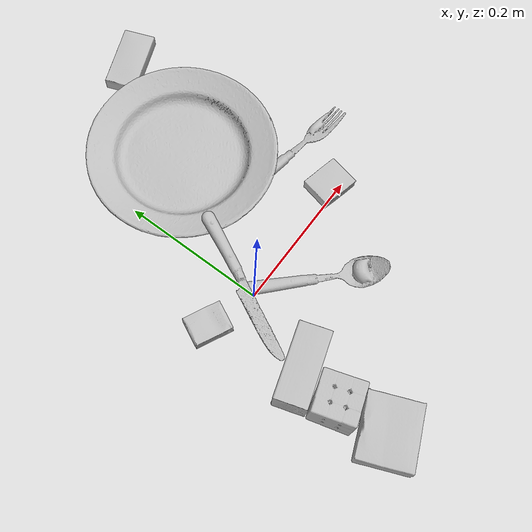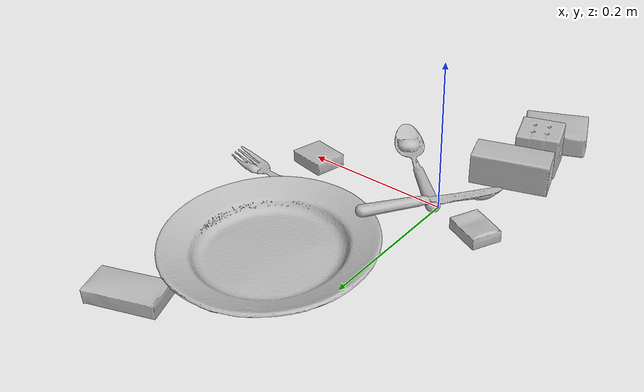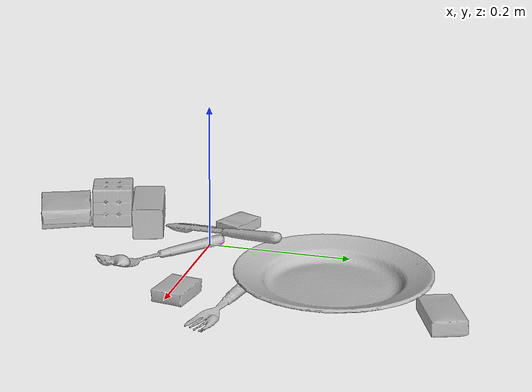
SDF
<sdf version="1.4">
  <world name="default">
    <light name="light1" type="point">
      <pose>0 0 1 0 0 0</pose>
      <diffuse>3 3 3 1</diffuse>
      <specular>3 3 3 1</specular>
    </light>
    <light name="light2" type="point">
      <pose>0 0.5 2 0 0 0</pose>
      <diffuse>1 1 1 1</diffuse>
      <specular>1 1 1 1</specular>
    </light>
    <light name="light3" type="point">
      <pose>0 0.5 2 0 0 0</pose>
      <diffuse>3 3 3 1</diffuse>
      <specular>3 3 3 1</specular>
    </light>
    <scene>
      <ambient>0.7 0.7 0.7</ambient>
    </scene>
    <model name="box11">
      <link name="link_box11">
        <collision name="default">
          <geometry>
            <mesh>
              <uri>model://gelatin_box/collision_meshes/collision.obj</uri>
              <scale>1.0 1.0 1.0</scale>
            </mesh>
          </geometry>
          <surface>
            <friction>
              <ode>
                <mu>0.5</mu>
                <mu2>0.5</mu2>
              </ode>
            </friction>
          <contact>
        <ode>
            <max_vel>0</max_vel>
            <min_depth>0.0001</min_depth>
            <kp>1e8</kp>
        </ode>
    </contact></surface>
        </collision>
        <visual name="default">
          <geometry>
            <mesh>
              <uri>model://gelatin_box/visual_meshes/visual.dae</uri>
              <scale>1.0 1.0 1.0</scale>
            </mesh>
          </geometry>
        </visual>
        <inertial>
          <mass>0.25029057264328003</mass>
          <pose>0.0004319618456065655 0.00011156871914863586 -0.0003640321083366871 -0.0010503719874808634 -0.004755820553863559 0.01644055760983946</pose>
          <inertia>
            <ixx>0.00017668474</ixx>
            <iyy>0.000126205</iyy>
            <izz>0.00026895347</izz>
            <ixy>0</ixy>
            <ixz>0</ixz>
            <iyz>0</iyz>
          </inertia>
        </inertial>
      </link>
      <pose>-0.04236810281872749 -0.2341756820678711 0.015168314799666405 0.005597260701167845 -0.007304341015217546 1.9556753325202278</pose>
    </model>
    <model name="box12">
      <link name="link_box12">
        <collision name="default">
          <geometry>
            <mesh>
              <uri>model://rubiks_cube/collision_meshes/collision.obj</uri>
              <scale>1.0 1.0 1.0</scale>
            </mesh>
          </geometry>
          <surface>
            <friction>
              <ode>
                <mu>0.5</mu>
                <mu2>0.5</mu2>
              </ode>
            </friction>
          <contact>
        <ode>
            <max_vel>0</max_vel>
            <min_depth>0.0001</min_depth>
            <kp>1e8</kp>
        </ode>
    </contact></surface>
        </collision>
        <visual name="default">
          <geometry>
            <mesh>
              <uri>model://rubiks_cube/visual_meshes/visual.dae</uri>
              <scale>1.0 1.0 1.0</scale>
            </mesh>
          </geometry>
        </visual>
        <inertial>
          <mass>0.21638615429401398</mass>
          <pose>2.6721043468569405e-05 5.2569666877388954e-05 -7.264316536748083e-06 -0.054671974778446215 -0.0981397652693683 -0.03445575269454635</pose>
          <inertia>
            <ixx>0.00011956789</ixx>
            <iyy>0.00011901029</iyy>
            <izz>0.00012055871</izz>
            <ixy>0</ixy>
            <ixz>0</ixz>
            <iyz>0</iyz>
          </inertia>
        </inertial>
      </link>
      <pose>-0.05248400941491127 -0.1637006551027298 0.028678977862000465 -2.721959507679151e-06 -1.1335705419697509e-06 0.30604878222834553</pose>
    </model>
    <model name="box13">
      <link name="link_box13">
        <collision name="default">
          <geometry>
            <mesh>
              <uri>model://pudding_box/collision_meshes/collision.obj</uri>
              <scale>0.5 0.5 0.5</scale>
            </mesh>
          </geometry>
          <surface>
            <friction>
              <ode>
                <mu>0.5</mu>
                <mu2>0.5</mu2>
              </ode>
            </friction>
          <contact>
        <ode>
            <max_vel>0</max_vel>
            <min_depth>0.0001</min_depth>
            <kp>1e8</kp>
        </ode>
    </contact></surface>
        </collision>
        <visual name="default">
          <geometry>
            <mesh>
              <uri>model://pudding_box/visual_meshes/visual.dae</uri>
              <scale>0.5 0.5 0.5</scale>
            </mesh>
          </geometry>
        </visual>
        <inertial>
          <mass>0.024692855775356293</mass>
          <pose>0.00024474109522998333 0.00040339428232982755 -0.0002594413817860186 0.005213102294063647 -0.006603794537377036 0.020079827031592012</pose>
          <inertia>
            <ixx>6.9785e-06</ixx>
            <iyy>4.695185e-06</iyy>
            <izz>1.030558e-05</izz>
            <ixy>0</ixy>
            <ixz>0</ixz>
            <iyz>0</iyz>
          </inertia>
        </inertial>
      </link>
      <pose>0.18741346895694733 0.012415344826877117 0.009862900711596012 0.022348477492758582 -0.011391760947895995 1.3557119353073426</pose>
    </model>
    <model name="box21">
      <link name="link_box21">
        <collision name="default">
          <geometry>
            <mesh>
              <uri>model://wood_block/collision_meshes/collision.obj</uri>
              <scale>0.5 0.5 0.5</scale>
            </mesh>
          </geometry>
          <surface>
            <friction>
              <ode>
                <mu>0.5</mu>
                <mu2>0.5</mu2>
              </ode>
            </friction>
          <contact>
        <ode>
            <max_vel>0</max_vel>
            <min_depth>0.0001</min_depth>
            <kp>1e8</kp>
        </ode>
    </contact></surface>
        </collision>
        <visual name="default">
          <geometry>
            <mesh>
              <uri>model://wood_block/visual_meshes/visual.dae</uri>
              <scale>0.5 0.5 0.5</scale>
            </mesh>
          </geometry>
        </visual>
        <inertial>
          <mass>0.2621258497238159</mass>
          <pose>-2.9066577553749084e-06 -0.000285404734313488 0.00013204291462898254 -0.05220799390803197 -0.005192696360797016 -0.006861376940793837</pose>
          <inertia>
            <ixx>8.7691005e-05</ixx>
            <iyy>0.00027701593</iyy>
            <izz>0.00027597975</izz>
            <ixy>0</ixy>
            <ixz>0</ixz>
            <iyz>0</iyz>
          </inertia>
        </inertial>
      </link>
      <pose>-0.04398008808493614 -0.10599411278963089 0.022629259154200554 -0.0052085656566694 0.0057187583127522165 -2.8356455361711554</pose>
    </model>
    <model name="box22">
      <link name="link_box22">
        <collision name="default">
          <geometry>
            <mesh>
              <uri>model://cracker_box/collision_meshes/collision.obj</uri>
              <scale>0.25 0.25 0.25</scale>
            </mesh>
          </geometry>
          <surface>
            <friction>
              <ode>
                <mu>0.5</mu>
                <mu2>0.5</mu2>
              </ode>
            </friction>
          <contact>
        <ode>
            <max_vel>0</max_vel>
            <min_depth>0.0001</min_depth>
            <kp>1e8</kp>
        </ode>
    </contact></surface>
        </collision>
        <visual name="default">
          <geometry>
            <mesh>
              <uri>model://cracker_box/visual_meshes/visual.dae</uri>
              <scale>0.25 0.25 0.25</scale>
            </mesh>
          </geometry>
        </visual>
        <inertial>
          <mass>0.04544714838266373</mass>
          <pose>0.0002366049593547359 6.358561950037256e-05 -0.0004257383698131889 -0.0003162075981767565 -0.011106493326025165 0.0025467940711340945</pose>
          <inertia>
            <ixx>7.224829e-06</ixx>
            <iyy>1.1929612e-05</iyy>
            <izz>1.702465e-05</izz>
            <ixy>0</ixy>
            <ixz>0</ixz>
            <iyz>0</iyz>
          </inertia>
        </inertial>
      </link>
      <pose>-0.06721343845129013 0.02236833982169628 0.009120451286435127 -0.011787934489283666 -0.007367182879963467 2.691478286448486</pose>
    </model>
    <model name="box23">
      <link name="link_box23">
        <collision name="default">
          <geometry>
            <mesh>
              <uri>model://sugar_box/collision_meshes/collision.obj</uri>
              <scale>0.5 0.5 0.5</scale>
            </mesh>
          </geometry>
          <surface>
            <friction>
              <ode>
                <mu>0.5</mu>
                <mu2>0.5</mu2>
              </ode>
            </friction>
          <contact>
        <ode>
            <max_vel>0</max_vel>
            <min_depth>0.0001</min_depth>
            <kp>1e8</kp>
        </ode>
    </contact></surface>
        </collision>
        <visual name="default">
          <geometry>
            <mesh>
              <uri>model://sugar_box/visual_meshes/visual.dae</uri>
              <scale>0.5 0.5 0.5</scale>
            </mesh>
          </geometry>
        </visual>
        <inertial>
          <mass>0.08974423259496689</mass>
          <pose>0.0005171863595023751 1.924554817378521e-05 -0.00018182402709499002 -0.00040462647498757867 0.0010506636387592515 0.0026153785559760484</pose>
          <inertia>
            <ixx>1.869366e-05</ixx>
            <iyy>6.0421757e-05</iyy>
            <izz>7.233205e-05</izz>
            <ixy>0</ixy>
            <ixz>0</ixz>
            <iyz>0</iyz>
          </inertia>
        </inertial>
      </link>
      <pose>0.1724603921175003 0.34944045543670654 0.011399300768971443 0.0007746824608996926 -0.023433146690533462 0.3621817096858566</pose>
    </model>
    <model name="plate1">
      <link name="link_plate1">
        <collision name="default">
          <geometry>
            <mesh>
              <uri>model://plate/collision_meshes/collision.obj</uri>
              <scale>1.0 1.0 1.0</scale>
            </mesh>
          </geometry>
          <surface>
            <friction>
              <ode>
                <mu>0.5</mu>
                <mu2>0.5</mu2>
              </ode>
            </friction>
          <contact>
        <ode>
            <max_vel>0</max_vel>
            <min_depth>0.0001</min_depth>
            <kp>1e8</kp>
        </ode>
    </contact></surface>
        </collision>
        <visual name="default">
          <geometry>
            <mesh>
              <uri>model://plate/visual_meshes/visual.dae</uri>
              <scale>1.0 1.0 1.0</scale>
            </mesh>
          </geometry>
        </visual>
        <inertial>
          <mass>0.25075921416282654</mass>
          <pose>-0.0006044597248546779 0.00027825814322568476 -0.0010562010575085878 0.0022187872861569474 -0.003225478732834207 0.4526086398584511</pose>
          <inertia>
            <ixx>0.0011730565</ixx>
            <iyy>0.0011618367</iyy>
            <izz>0.0022943232</izz>
            <ixy>0</ixy>
            <ixz>0</ixz>
            <iyz>0</iyz>
          </inertia>
        </inertial>
      </link>
      <pose>0.10256801545619965 0.19891923666000366 0.013732998631894588 3.693208111571032e-09 -3.461223552708961e-08 -2.0210335769865218</pose>
    </model>
    <model name="silverware1">
      <link name="link_silverware1">
        <collision name="default">
          <geometry>
            <mesh>
              <uri>model://spoon/collision_meshes/collision.obj</uri>
              <scale>1.0 1.0 1.0</scale>
            </mesh>
          </geometry>
          <surface>
            <friction>
              <ode>
                <mu>0.5</mu>
                <mu2>0.5</mu2>
              </ode>
            </friction>
          <contact>
        <ode>
            <max_vel>0</max_vel>
            <min_depth>0.0001</min_depth>
            <kp>1e8</kp>
        </ode>
    </contact></surface>
        </collision>
        <visual name="default">
          <geometry>
            <mesh>
              <uri>model://spoon/visual_meshes/visual.dae</uri>
              <scale>1.0 1.0 1.0</scale>
            </mesh>
          </geometry>
        </visual>
        <inertial>
          <mass>0.036317918449640274</mass>
          <pose>-0.005526306107640266 -0.0016034167492762208 -0.0007271648501046002 0.03521625205726148 -0.039065835985121374 0.0061506181118877856</pose>
          <inertia>
            <ixx>2.0200612e-06</ixx>
            <iyy>0.00013818844</iyy>
            <izz>0.00013918467</izz>
            <ixy>0</ixy>
            <ixz>0</ixz>
            <iyz>0</iyz>
          </inertia>
        </inertial>
      </link>
      <pose>0.06683284044265747 -0.04902283102273941 0.008385262452065945 0.006731782078054881 0.026892977521093854 -0.7670641732790272</pose>
    </model>
    <model name="silverware2">
      <link name="link_silverware2">
        <collision name="default">
          <geometry>
            <mesh>
              <uri>model://knife/collision_meshes/collision.obj</uri>
              <scale>1.0 1.0 1.0</scale>
            </mesh>
          </geometry>
          <surface>
            <friction>
              <ode>
                <mu>0.5</mu>
                <mu2>0.5</mu2>
              </ode>
            </friction>
          <contact>
        <ode>
            <max_vel>0</max_vel>
            <min_depth>0.0001</min_depth>
            <kp>1e8</kp>
        </ode>
    </contact></surface>
        </collision>
        <visual name="default">
          <geometry>
            <mesh>
              <uri>model://knife/visual_meshes/visual.dae</uri>
              <scale>1.0 1.0 1.0</scale>
            </mesh>
          </geometry>
        </visual>
        <inertial>
          <mass>0.03166225552558899</mass>
          <pose>-0.02378525584936142 0.0015275123296305537 5.0620161346159875e-05 0.07305183970819301 0.01724842094470774 -0.007409827313526415</pose>
          <inertia>
            <ixx>8.9870355e-07</ixx>
            <iyy>0.00012164128</iyy>
            <izz>0.00012193073</izz>
            <ixy>0</ixy>
            <ixz>0</ixz>
            <iyz>0</iyz>
          </inertia>
        </inertial>
      </link>
      <pose>-0.003116547130048275 0.01706967130303383 0.02091708779335022 -0.07800478455257184 0.15470605260793996 -2.019945649133687</pose>
    </model>
    <model name="silverware3">
      <link name="link_silverware3">
        <collision name="default">
          <geometry>
            <mesh>
              <uri>model://fork/collision_meshes/collision.obj</uri>
              <scale>1.0 1.0 1.0</scale>
            </mesh>
          </geometry>
          <surface>
            <friction>
              <ode>
                <mu>0.5</mu>
                <mu2>0.5</mu2>
              </ode>
            </friction>
          <contact>
        <ode>
            <max_vel>0</max_vel>
            <min_depth>0.0001</min_depth>
            <kp>1e8</kp>
        </ode>
    </contact></surface>
        </collision>
        <visual name="default">
          <geometry>
            <mesh>
              <uri>model://fork/visual_meshes/visual.dae</uri>
              <scale>1.0 1.0 1.0</scale>
            </mesh>
          </geometry>
        </visual>
        <inertial>
          <mass>0.03018845245242119</mass>
          <pose>-0.029570050537586212 0.00046588227269239724 0.00032188609475269914 -0.013551782414775644 -0.010977841906558662 0.014453907874592884</pose>
          <inertia>
            <ixx>1.0582761e-06</ixx>
            <iyy>7.881335e-05</iyy>
            <izz>7.928668e-05</izz>
            <ixy>0</ixy>
            <ixz>0</ixz>
            <iyz>0</iyz>
          </inertia>
        </inertial>
      </link>
      <pose>0.19396035373210907 0.08098606765270233 0.0057114604860544205 -0.18154105649362678 0.024890332172322168 -0.18118542775318985</pose>
    </model>
  <physics type="ode">
      <max_contacts>50</max_contacts>
      <ode>
        <solver>
          <type>quick</type>
          <iters>75</iters>
        </solver>
        <constraints>
          <contact_max_correcting_vel>0</contact_max_correcting_vel>
          <contact_surface_layer>0</contact_surface_layer>
        </constraints>
      </ode>
    </physics></world>
</sdf>
